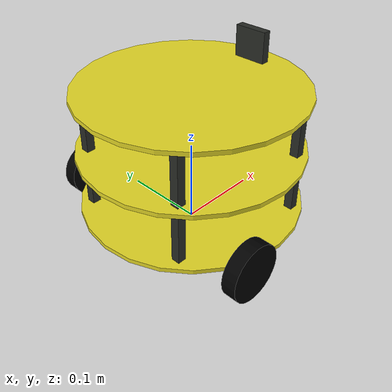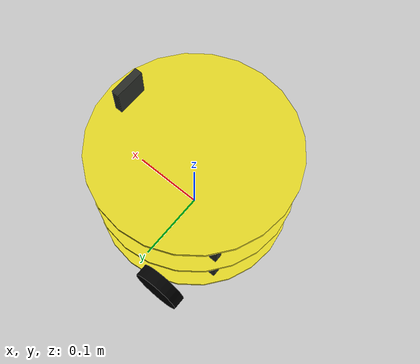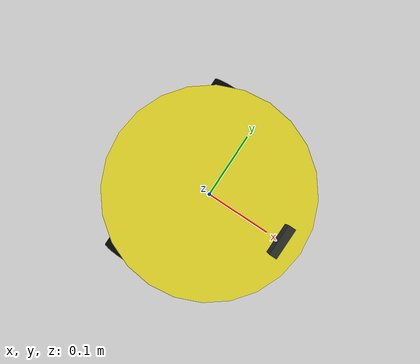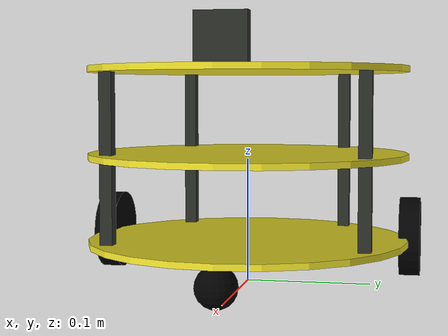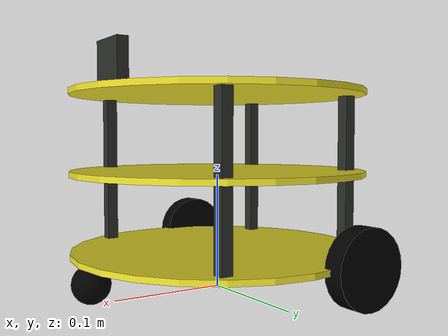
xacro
<?xml version="1.0"?>

<robot name="mrobot" xmlns:xacro="http://www.ros.org/wiki/xacro">

	<xacro:include filename="$(find mrobot_gazebo)/urdf/mrobot_body.urdf.xacro" />
	<xacro:include filename="$(find mrobot_gazebo)/urdf/camera.xacro" />

	<xacro:property name="camera_offset_x" value="0.1" />
	<xacro:property name="camera_offset_y" value="0" />
	<xacro:property name="camera_offset_z" value="0.02" />

	<!-- Body of mrobot, with plates, standoffs and Create (including sim sensors) -->
	<mrobot_body/>

	<!-- Attach the Kinect -->
	<joint name="camera_joint" type="fixed">
		<origin xyz="${camera_offset_x} ${camera_offset_y} ${camera_offset_z}" rpy="0 0 0" />
		<parent link="plate_2_link"/>
		<child link="camera_link"/>
	</joint>

	<xacro:usb_camera prefix="camera"/>

</robot>

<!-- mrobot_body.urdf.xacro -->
<robot name="mrobot" xmlns:xacro="http://www.ros.org/wiki/xacro">

    <!-- Defining the colors used in this robot -->
    <material name="Black">
        <color rgba="0 0 0 1"/>
    </material>

    <material name="White">
        <color rgba="1 1 1 1"/>
    </material>

    <material name="Blue">
        <color rgba="0 0 1 1"/>
    </material>

    <material name="Red">
        <color rgba="1 0 0 1"/>
    </material>

    <!-- PROPERTY LIST -->
    <!--All units in m-kg-s-radians unit system -->
    <xacro:property name="M_PI" value="3.1415926535897931" />

    <!-- Main body length, width, height and mass -->
    <xacro:property name="base_mass"        value="0.5" />
    <xacro:property name="base_link_radius" value="0.13"/>
    <xacro:property name="base_link_length" value="0.005"/>

    <xacro:property name="motor_x" value="-0.05"/>

    <!-- Caster radius and mass -->
    <xacro:property name="caster_radius"          value="0.016" />
    <xacro:property name="caster_mass"            value="0.01" />
    <xacro:property name="caster_joint_origin_x"  value="-0.12" />

    <!-- Wheel radius, height and mass -->
    <xacro:property name="wheel_radius" value="0.033" />
    <xacro:property name="wheel_height" value="0.017" />
    <xacro:property name="wheel_mass"   value="0.1" />

    <!-- plate height and mass -->
    <xacro:property name="plate_mass"   value="0.05"/>
    <xacro:property name="plate_height" value="0.07"/>
    <xacro:property name="standoff_x"   value="0.12"/>
    <xacro:property name="standoff_y"   value="0.10"/>

    <!-- Macro for inertia matrix -->
    <xacro:macro name="sphere_inertial_matrix" params="m r">
        <inertial>
            <mass value="${m}" />
            <inertia ixx="${2*m*r*r/5}" ixy="0" ixz="0"
                iyy="${2*m*r*r/5}" iyz="0"
                izz="${2*m*r*r/5}" />
        </inertial>
    </xacro:macro>

    <xacro:macro name="cylinder_inertial_matrix" params="m r h">
        <inertial>
            <mass value="${m}" />
            <inertia ixx="${m*(3*r*r+h*h)/12}" ixy = "0" ixz = "0"
                iyy="${m*(3*r*r+h*h)/12}" iyz = "0"
                izz="${m*r*r/2}" />
        </inertial>
    </xacro:macro>

    <xacro:macro name="box_inertial_matrix" params="m w h d">
        <inertial>
            <mass value="${m}" />
            <inertia ixx="${m*(h*h+d*d)/12}" ixy = "0" ixz = "0"
                iyy="${m*(w*w+d*d)/12}" iyz = "0"
                izz="${m*(w*w+h*h)/12}" />
        </inertial>
    </xacro:macro>

    <!-- Macro for wheel joint -->
    <xacro:macro name="wheel" params="lr translateY">
        <!-- lr: left, right -->
        <link name="wheel_${lr}_link">
            <visual>
                <origin xyz="0 0 0" rpy="${M_PI/2} 0  0 " />
                <geometry>
                    <cylinder length="${wheel_height}" radius="${wheel_radius}" />
                </geometry>
                <material name="Black" />
            </visual>
            <collision>
                <origin xyz="0 0 0" rpy="${M_PI/2} 0 0 " />
                <geometry>
                    <cylinder length="${wheel_height}" radius="${wheel_radius}" />
                </geometry>
            </collision>
            <cylinder_inertial_matrix  m="${wheel_mass}" r="${wheel_radius}" h="${wheel_height}" />
        </link>

        <gazebo reference="wheel_${lr}_link">
            <material>Gazebo/Black</material>
        </gazebo>

        <joint name="base_to_wheel_${lr}_joint" type="continuous">
            <parent link="base_link"/>
            <child link="wheel_${lr}_link"/>
            <origin xyz="${motor_x} ${translateY * base_link_radius} 0" rpy="0 0 0" />
            <axis xyz="0 1 0" rpy="0  0" />
        </joint>

        <!-- Transmission is important to link the joints and the controller -->
        <transmission name="wheel_${lr}_joint_trans">
            <type>transmission_interface/SimpleTransmission</type>
            <joint name="base_to_wheel_${lr}_joint" />
            <actuator name="wheel_${lr}_joint_motor">
                <hardwareInterface>VelocityJointInterface</hardwareInterface>
                <mechanicalReduction>1</mechanicalReduction>
            </actuator>
        </transmission>
    </xacro:macro>

    <!-- Macro for caster joint -->
    <xacro:macro name="caster" params="fb translateX">
        <!-- fb: front, back -->
        <link name="${fb}_caster_link">
            <visual>
                <origin xyz="0 0 0 " rpy="0 0 0" />
                <geometry>
                    <sphere radius="${caster_radius}" />
                </geometry>
                <material name="Black" />
            </visual>
            <collision>
                <geometry>
                    <sphere radius="${caster_radius}" />
                </geometry>
                <origin xyz="0 0 0 " rpy="0 0 0" />
            </collision>
            <sphere_inertial_matrix  m="${caster_mass}" r="${caster_radius}" />
        </link>

        <gazebo reference="${fb}_caster_link">
            <material>Gazebo/Black</material>
        </gazebo>

        <joint name="base_to_${fb}_caster_joint" type="fixed">
            <parent link="base_link"/>
            <child link="${fb}_caster_link"/>
            <origin xyz="${translateX*caster_joint_origin_x} 0 ${-caster_radius}" rpy="0 0 0"/>
        </joint>
    </xacro:macro>

    <!-- Macro for plate joint -->
    <xacro:macro name="plate" params="num parent">
        <link name="plate_${num}_link">
            <cylinder_inertial_matrix  m="0.1" r="${base_link_radius}" h="${base_link_length}" />

            <visual>
                <origin xyz=" 0 0 0 " rpy="0 0 0" />
                <geometry>
                    <cylinder length="${base_link_length}" radius="${base_link_radius}"/>
                </geometry>
                <material name="yellow"/>
            </visual>

            <collision>
                <origin xyz="0.0 0.0 0.0" rpy="0 0 0" />
                <geometry>
                    <cylinder length="${base_link_length}" radius="${base_link_radius}"/>
                </geometry>
            </collision>
        </link>
        <gazebo reference="plate_${num}_link">
            <material>Gazebo/Blue</material>
        </gazebo>
        <joint name="plate_${num}_joint" type="fixed">
            <origin xyz="0 0 ${plate_height}" rpy="0 0 0" />
            <parent link="${parent}"/>
            <child link="plate_${num}_link" />
        </joint>
    </xacro:macro>

    <!-- Macro for standoff joint -->
    <xacro:macro name="mrobot_standoff_2in" params="parent number x_loc y_loc z_loc">
        <joint name="standoff_2in_${number}_joint" type="fixed">
            <origin xyz="${x_loc} ${y_loc} ${z_loc}" rpy="0 0 0" />
            <parent link="${parent}"/>
            <child link="standoff_2in_${number}_link" />
        </joint>

        <link name="standoff_2in_${number}_link">
            <inertial>
                <mass value="0.001" />
                <origin xyz="0 0 0" />
                <inertia ixx="0.0001" ixy="0.0" ixz="0.0"
          iyy="0.0001" iyz="0.0"
          izz="0.0001" />
            </inertial>

            <visual>
                <origin xyz=" 0 0 0 " rpy="0 0 0" />
                <geometry>
                    <box size="0.01 0.01 0.07" />
                </geometry>
                <material name="black">
                    <color rgba="0.16 0.17 0.15 0.9"/>
                </material>
            </visual>

            <collision>
                <origin xyz="0.0 0.0 0.0" rpy="0 0 0" />
                <geometry>
                    <box size="0.01 0.01 0.07" />
                </geometry>
            </collision>
        </link>
    </xacro:macro>

    <!-- BASE-FOOTPRINT -->
    <!-- base_footprint is a fictitious link(frame) that is on the ground right below base_link origin -->
    <xacro:macro name="mrobot_body">
        <link name="base_footprint">
            <visual>
                <origin xyz="0 0 0" rpy="0 0 0" />
                <geometry>
                    <box size="0.001 0.001 0.001" />
                </geometry>
            </visual>
        </link>

        <joint name="base_footprint_joint" type="fixed">
            <origin xyz="0 0 ${wheel_radius}" rpy="0 0 0" />
            <parent link="base_footprint"/>
            <child link="base_link" />
        </joint>

        <!-- BASE-LINK -->
        <!--Actual body/chassis of the robot-->
        <link name="base_link">
            <cylinder_inertial_matrix  m="${base_mass}" r="${base_link_radius}" h="${base_link_length}" />
            <visual>
                <origin xyz=" 0 0 0" rpy="0 0 0" />
                <geometry>
                    <cylinder length="${base_link_length}" radius="${base_link_radius}"/>
                </geometry>
                <material name="yellow" />
            </visual>

            <collision>
                <origin xyz="0 0 0" rpy="0 0 0" />
                <geometry>
                    <cylinder length="${base_link_length}" radius="${base_link_radius}"/>
                </geometry>
            </collision>
        </link>
        <gazebo reference="base_link">
            <material>Gazebo/Blue</material>
        </gazebo>

        <!-- Wheel Definitions -->
        <wheel lr="right"  translateY="1" />
        <wheel lr="left"  translateY="-1" />

        <!-- Casters Definitions -->
        <caster fb="front"  translateX="-1" />

        <!-- plates and standoff Definitions -->
        <mrobot_standoff_2in parent="base_link" number="1" x_loc="-${standoff_x/2 + 0.03}" y_loc="-${standoff_y - 0.03}" z_loc="${plate_height/2}"/>
        <mrobot_standoff_2in parent="base_link" number="2" x_loc="-${standoff_x/2 + 0.03}" y_loc="${standoff_y - 0.03}" z_loc="${plate_height/2}"/>
        <mrobot_standoff_2in parent="base_link" number="3" x_loc="${standoff_x/2}" y_loc="-${standoff_y}" z_loc="${plate_height/2}"/>
        <mrobot_standoff_2in parent="base_link" number="4" x_loc="${standoff_x/2}" y_loc="${standoff_y}" z_loc="${plate_height/2}"/>
        <mrobot_standoff_2in parent="standoff_2in_1_link" number="5" x_loc="0" y_loc="0" z_loc="${plate_height}"/>
        <mrobot_standoff_2in parent="standoff_2in_2_link" number="6" x_loc="0" y_loc="0" z_loc="${plate_height}"/>
        <mrobot_standoff_2in parent="standoff_2in_3_link" number="7" x_loc="0" y_loc="0" z_loc="${plate_height}"/>
        <mrobot_standoff_2in parent="standoff_2in_4_link" number="8" x_loc="0" y_loc="0" z_loc="${plate_height}"/>

        <!-- plate Definitions -->
        <plate num="1"  parent="base_link" />
        <plate num="2"  parent="plate_1_link" />

        <!-- controller -->
        <gazebo>
            <plugin name="differential_drive_controller" filename="libgazebo_ros_diff_drive.so">
                <rosDebugLevel>Debug</rosDebugLevel>
                <publishWheelTF>true</publishWheelTF>
                <robotNamespace>/</robotNamespace>
                <publishTf>1</publishTf>
                <publishWheelJointState>true</publishWheelJointState>
                <alwaysOn>true</alwaysOn>
                <updateRate>100.0</updateRate>
                <legacyMode>true</legacyMode>
                <leftJoint>base_to_wheel_left_joint</leftJoint>
                <rightJoint>base_to_wheel_right_joint</rightJoint>
                <wheelSeparation>${base_link_radius*2}</wheelSeparation>
                <wheelDiameter>${2*wheel_radius}</wheelDiameter>
                <broadcastTF>1</broadcastTF>
                <wheelTorque>30</wheelTorque>
                <wheelAcceleration>1.8</wheelAcceleration>
                <commandTopic>cmd_vel</commandTopic>
                <odometryFrame>odom</odometryFrame>
                <odometryTopic>odom</odometryTopic>
                <robotBaseFrame>base_footprint</robotBaseFrame>
            </plugin>
        </gazebo>

    </xacro:macro>
</robot>

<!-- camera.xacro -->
<robot xmlns:xacro="http://www.ros.org/wiki/xacro" name="camera">

    <xacro:macro name="usb_camera" params="prefix:=camera">
        <!-- Create laser reference frame -->
        <link name="${prefix}_link">
            <inertial>
                <mass value="0.1" />
                <origin xyz="0 0 0" />
                <inertia ixx="0.01" ixy="0.0" ixz="0.0"
                         iyy="0.01" iyz="0.0"
                         izz="0.01" />
            </inertial>

            <visual>
                <origin xyz=" 0 0 0 " rpy="0 0 0" />
                <geometry>
                    <box size="0.01 0.04 0.04" />
                </geometry>
                <material name="black"/>
            </visual>

            <collision>
                <origin xyz="0.0 0.0 0.0" rpy="0 0 0" />
                <geometry>
                    <box size="0.01 0.04 0.04" />
                </geometry>
            </collision>
        </link>
        <gazebo reference="${prefix}_link">
            <material>Gazebo/Black</material>
        </gazebo>

        <gazebo reference="${prefix}_link">
            <sensor type="camera" name="camera_node">
                <update_rate>30.0</update_rate>
                <camera name="head">
                    <horizontal_fov>1.3962634</horizontal_fov>
                    <image>
                        <width>1280</width>
                        <height>720</height>
                        <format>R8G8B8</format>
                    </image>
                    <clip>
                        <near>0.02</near>
                        <far>300</far>
                    </clip>
                    <noise>
                        <type>gaussian</type>
                        <mean>0.0</mean>
                        <stddev>0.007</stddev>
                    </noise>
                </camera>
                <plugin name="gazebo_camera" filename="libgazebo_ros_camera.so">
                    <alwaysOn>true</alwaysOn>
                    <updateRate>0.0</updateRate>
                    <cameraName>/camera</cameraName>
                    <imageTopicName>image_raw</imageTopicName>
                    <cameraInfoTopicName>camera_info</cameraInfoTopicName>
                    <frameName>camera_link</frameName>
                    <hackBaseline>0.07</hackBaseline>
                    <distortionK1>0.0</distortionK1>
                    <distortionK2>0.0</distortionK2>
                    <distortionK3>0.0</distortionK3>
                    <distortionT1>0.0</distortionT1>
                    <distortionT2>0.0</distortionT2>
                </plugin>
            </sensor>
        </gazebo>

    </xacro:macro>
</robot>
